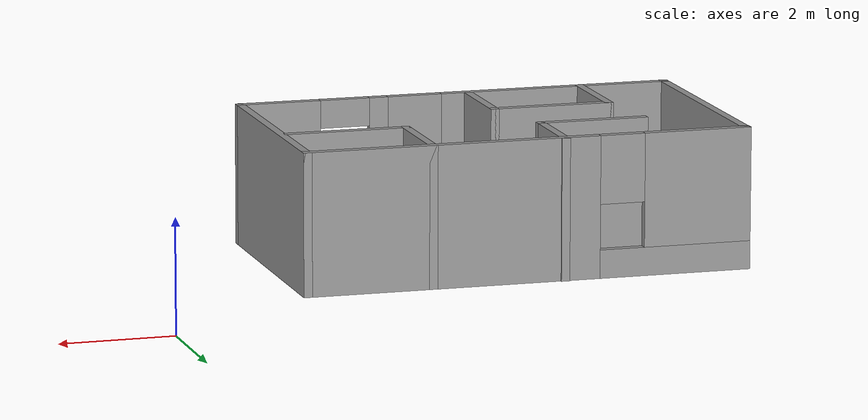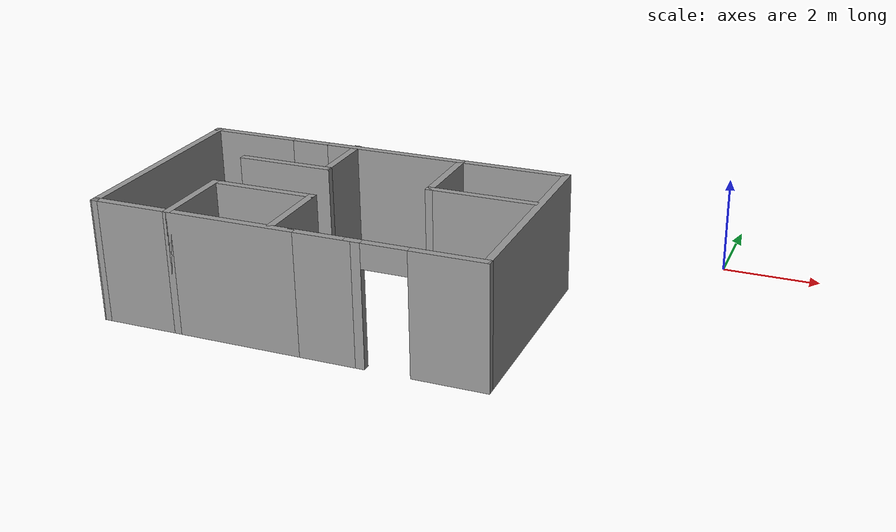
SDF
<?xml version='1.0'?>
<sdf version='1.7'>
  <model name='room'>
    <pose>-5.3825 -3.3125 0 0 -0 0</pose>
    <link name='Wall_0'>
      <pose>-1.3825 1.1125 0 0 -0 3.14159</pose>
      <visual name='Wall_0_Visual_0'>
        <pose>-1.3625 0 1.25 0 -0 0</pose>
        <geometry>
          <box>
            <size>5.275 0.15 2.5</size>
          </box>
        </geometry>
        <material>
          <script>
            <uri>file://media/materials/scripts/gazebo.material</uri>
            <name>Gazebo/Grey</name>
          </script>
          <ambient>1 1 1 1</ambient>
        </material>
        <meta>
          <layer>0</layer>
        </meta>
      </visual>
      <collision name='Wall_0_Collision_0'>
        <geometry>
          <box>
            <size>5.275 0.15 2.5</size>
          </box>
        </geometry>
        <pose>-1.3625 0 1.25 0 -0 0</pose>
      </collision>
      <visual name='Wall_0_Visual_1'>
        <pose>2.6375 0 0.25 0 -0 0</pose>
        <geometry>
          <box>
            <size>2.725 0.15 0.5</size>
          </box>
        </geometry>
        <material>
          <script>
            <uri>file://media/materials/scripts/gazebo.material</uri>
            <name>Gazebo/Grey</name>
          </script>
          <ambient>1 1 1 1</ambient>
        </material>
        <meta>
          <layer>0</layer>
        </meta>
      </visual>
      <collision name='Wall_0_Collision_1'>
        <geometry>
          <box>
            <size>2.725 0.15 0.5</size>
          </box>
        </geometry>
        <pose>2.6375 0 0.25 0 -0 0</pose>
      </collision>
      <visual name='Wall_0_Visual_2'>
        <pose>3.0375 0 1.5 0 -0 0</pose>
        <geometry>
          <box>
            <size>1.925 0.15 2</size>
          </box>
        </geometry>
        <material>
          <script>
            <uri>file://media/materials/scripts/gazebo.material</uri>
            <name>Gazebo/Grey</name>
          </script>
          <ambient>1 1 1 1</ambient>
        </material>
        <meta>
          <layer>0</layer>
        </meta>
      </visual>
      <collision name='Wall_0_Collision_2'>
        <geometry>
          <box>
            <size>1.925 0.15 2</size>
          </box>
        </geometry>
        <pose>3.0375 0 1.5 0 -0 0</pose>
      </collision>
      <visual name='Wall_0_Visual_3'>
        <pose>1.675 0 1.9 0 -0 0</pose>
        <geometry>
          <box>
            <size>0.8 0.15 1.2</size>
          </box>
        </geometry>
        <material>
          <script>
            <uri>file://media/materials/scripts/gazebo.material</uri>
            <name>Gazebo/Grey</name>
          </script>
          <ambient>1 1 1 1</ambient>
        </material>
        <meta>
          <layer>0</layer>
        </meta>
      </visual>
      <collision name='Wall_0_Collision_3'>
        <geometry>
          <box>
            <size>0.8 0.15 1.2</size>
          </box>
        </geometry>
        <pose>1.675 0 1.9 0 -0 0</pose>
      </collision>
    </link>
    <link name='Wall_1'>
      <collision name='Wall_1_Collision'>
        <geometry>
          <box>
            <size>0.16 0.15 2.5</size>
          </box>
        </geometry>
        <pose>0 0 1.25 0 -0 0</pose>
      </collision>
      <visual name='Wall_1_Visual'>
        <pose>0 0 1.25 0 -0 0</pose>
        <geometry>
          <box>
            <size>0.16 0.15 2.5</size>
          </box>
        </geometry>
        <material>
          <script>
            <uri>file://media/materials/scripts/gazebo.material</uri>
            <name>Gazebo/Grey</name>
          </script>
          <ambient>1 1 1 1</ambient>
        </material>
        <meta>
          <layer>0</layer>
        </meta>
      </visual>
      <pose>-5.3025 1.1125 0 0 -0 0</pose>
    </link>
    <link name='Wall_11'>
      <collision name='Wall_11_Collision'>
        <geometry>
          <box>
            <size>1.75 0.15 2.5</size>
          </box>
        </geometry>
        <pose>0 0 1.25 0 -0 0</pose>
      </collision>
      <visual name='Wall_11_Visual'>
        <pose>0 0 1.25 0 -0 0</pose>
        <geometry>
          <box>
            <size>1.75 0.15 2.5</size>
          </box>
        </geometry>
        <material>
          <script>
            <uri>file://media/materials/scripts/gazebo.material</uri>
            <name>Gazebo/Grey</name>
          </script>
          <ambient>1 1 1 1</ambient>
        </material>
        <meta>
          <layer>0</layer>
        </meta>
      </visual>
      <pose>-3.7175 -2.4375 0 0 -0 1.5708</pose>
    </link>
    <link name='Wall_12'>
      <collision name='Wall_12_Collision'>
        <geometry>
          <box>
            <size>2.25 0.15 2.5</size>
          </box>
        </geometry>
        <pose>0 0 1.25 0 -0 0</pose>
      </collision>
      <visual name='Wall_12_Visual'>
        <pose>0 0 1.25 0 -0 0</pose>
        <geometry>
          <box>
            <size>2.25 0.15 2.5</size>
          </box>
        </geometry>
        <material>
          <script>
            <uri>file://media/materials/scripts/gazebo.material</uri>
            <name>Gazebo/Grey</name>
          </script>
          <ambient>1 1 1 1</ambient>
        </material>
        <meta>
          <layer>0</layer>
        </meta>
      </visual>
      <pose>-2.6675 -1.6375 0 0 -0 0</pose>
    </link>
    <link name='Wall_13'>
      <collision name='Wall_13_Collision'>
        <geometry>
          <box>
            <size>1.75 0.15 2.5</size>
          </box>
        </geometry>
        <pose>0 0 1.25 0 -0 0</pose>
      </collision>
      <visual name='Wall_13_Visual'>
        <pose>0 0 1.25 0 -0 0</pose>
        <geometry>
          <box>
            <size>1.75 0.15 2.5</size>
          </box>
        </geometry>
        <material>
          <script>
            <uri>file://media/materials/scripts/gazebo.material</uri>
            <name>Gazebo/Grey</name>
          </script>
          <ambient>1 1 1 1</ambient>
        </material>
        <meta>
          <layer>0</layer>
        </meta>
      </visual>
      <pose>-1.6175 -2.4375 0 0 -0 -1.5708</pose>
    </link>
    <link name='Wall_15'>
      <collision name='Wall_15_Collision'>
        <geometry>
          <box>
            <size>1.29 0.15 2.5</size>
          </box>
        </geometry>
        <pose>0 0 1.25 0 -0 0</pose>
      </collision>
      <visual name='Wall_15_Visual'>
        <pose>0 0 1.25 0 -0 0</pose>
        <geometry>
          <box>
            <size>1.29 0.15 2.5</size>
          </box>
        </geometry>
        <material>
          <script>
            <uri>file://media/materials/scripts/gazebo.material</uri>
            <name>Gazebo/Grey</name>
          </script>
          <ambient>1 1 1 1</ambient>
        </material>
        <meta>
          <layer>0</layer>
        </meta>
      </visual>
      <pose>-0.6275 -3.2375 0 0 -0 3.14159</pose>
    </link>
    <link name='Wall_17'>
      <collision name='Wall_17_Collision'>
        <geometry>
          <box>
            <size>1.75 0.15 2.5</size>
          </box>
        </geometry>
        <pose>0 0 1.25 0 -0 0</pose>
      </collision>
      <visual name='Wall_17_Visual'>
        <pose>0 0 1.25 0 -0 0</pose>
        <geometry>
          <box>
            <size>1.75 0.15 2.5</size>
          </box>
        </geometry>
        <material>
          <script>
            <uri>file://media/materials/scripts/gazebo.material</uri>
            <name>Gazebo/Grey</name>
          </script>
          <ambient>1 1 1 1</ambient>
        </material>
        <meta>
          <layer>0</layer>
        </meta>
      </visual>
      <pose>0.3225 0.3125 0 0 -0 -1.5708</pose>
    </link>
    <link name='Wall_18'>
      <collision name='Wall_18_Collision'>
        <geometry>
          <box>
            <size>2.25 0.15 2.5</size>
          </box>
        </geometry>
        <pose>0 0 1.25 0 -0 0</pose>
      </collision>
      <visual name='Wall_18_Visual'>
        <pose>0 0 1.25 0 -0 0</pose>
        <geometry>
          <box>
            <size>2.25 0.15 2.5</size>
          </box>
        </geometry>
        <material>
          <script>
            <uri>file://media/materials/scripts/gazebo.material</uri>
            <name>Gazebo/Grey</name>
          </script>
          <ambient>1 1 1 1</ambient>
        </material>
        <meta>
          <layer>0</layer>
        </meta>
      </visual>
      <pose>1.3725 -0.4875 0 0 -0 0</pose>
    </link>
    <link name='Wall_2'>
      <collision name='Wall_2_Collision'>
        <geometry>
          <box>
            <size>4.5 0.15 2.5</size>
          </box>
        </geometry>
        <pose>0 0 1.25 0 -0 0</pose>
      </collision>
      <visual name='Wall_2_Visual'>
        <pose>0 0 1.25 0 -0 0</pose>
        <geometry>
          <box>
            <size>4.5 0.15 2.5</size>
          </box>
        </geometry>
        <material>
          <script>
            <uri>file://media/materials/scripts/gazebo.material</uri>
            <name>Gazebo/Grey</name>
          </script>
          <ambient>1 1 1 1</ambient>
        </material>
        <meta>
          <layer>0</layer>
        </meta>
      </visual>
      <pose>-5.2975 -1.0625 0 0 -0 -1.5708</pose>
    </link>
    <link name='Wall_3'>
      <collision name='Wall_3_Collision'>
        <geometry>
          <box>
            <size>4.25 0.15 2.5</size>
          </box>
        </geometry>
        <pose>0 0 1.25 0 -0 0</pose>
      </collision>
      <visual name='Wall_3_Visual'>
        <pose>0 0 1.25 0 -0 0</pose>
        <geometry>
          <box>
            <size>4.25 0.15 2.5</size>
          </box>
        </geometry>
        <material>
          <script>
            <uri>file://media/materials/scripts/gazebo.material</uri>
            <name>Gazebo/Grey</name>
          </script>
          <ambient>1 1 1 1</ambient>
        </material>
        <meta>
          <layer>0</layer>
        </meta>
      </visual>
      <pose>-3.2475 -3.2375 0 0 -0 0</pose>
    </link>
    <link name='Wall_5'>
      <collision name='Wall_5_Collision'>
        <geometry>
          <box>
            <size>4.5 0.15 2.5</size>
          </box>
        </geometry>
        <pose>0 0 1.25 0 -0 0</pose>
      </collision>
      <visual name='Wall_5_Visual'>
        <pose>0 0 1.25 0 -0 0</pose>
        <geometry>
          <box>
            <size>4.5 0.15 2.5</size>
          </box>
        </geometry>
        <material>
          <script>
            <uri>file://media/materials/scripts/gazebo.material</uri>
            <name>Gazebo/Grey</name>
          </script>
          <ambient>1 1 1 1</ambient>
        </material>
        <meta>
          <layer>0</layer>
        </meta>
      </visual>
      <pose>2.5425 -1.0625 0 0 -0 -1.5708</pose>
    </link>
    <link name='Wall_6'>
      <pose>1.2425 -3.2375 0 0 -0 3.14159</pose>
      <visual name='Wall_6_Visual_0'>
        <pose>-0.6175 0 1.25 0 -0 0</pose>
        <geometry>
          <box>
            <size>1.515 0.15 2.5</size>
          </box>
        </geometry>
        <material>
          <script>
            <uri>file://media/materials/scripts/gazebo.material</uri>
            <name>Gazebo/Grey</name>
          </script>
          <ambient>1 1 1 1</ambient>
        </material>
        <meta>
          <layer>0</layer>
        </meta>
      </visual>
      <collision name='Wall_6_Collision_0'>
        <geometry>
          <box>
            <size>1.515 0.15 2.5</size>
          </box>
        </geometry>
        <pose>-0.6175 0 1.25 0 -0 0</pose>
      </collision>
      <visual name='Wall_6_Visual_1'>
        <pose>1.2075 0 1.25 0 -0 0</pose>
        <geometry>
          <box>
            <size>0.335 0.15 2.5</size>
          </box>
        </geometry>
        <material>
          <script>
            <uri>file://media/materials/scripts/gazebo.material</uri>
            <name>Gazebo/Grey</name>
          </script>
          <ambient>1 1 1 1</ambient>
        </material>
        <meta>
          <layer>0</layer>
        </meta>
      </visual>
      <collision name='Wall_6_Collision_1'>
        <geometry>
          <box>
            <size>0.335 0.15 2.5</size>
          </box>
        </geometry>
        <pose>1.2075 0 1.25 0 -0 0</pose>
      </collision>
      <visual name='Wall_6_Visual_2'>
        <pose>0.59 0 2.25 0 -0 0</pose>
        <geometry>
          <box>
            <size>0.9 0.15 0.5</size>
          </box>
        </geometry>
        <material>
          <script>
            <uri>file://media/materials/scripts/gazebo.material</uri>
            <name>Gazebo/Grey</name>
          </script>
          <ambient>1 1 1 1</ambient>
        </material>
        <meta>
          <layer>0</layer>
        </meta>
      </visual>
      <collision name='Wall_6_Collision_2'>
        <geometry>
          <box>
            <size>0.9 0.15 0.5</size>
          </box>
        </geometry>
        <pose>0.59 0 2.25 0 -0 0</pose>
      </collision>
    </link>
    <link name='Wall_8'>
      <collision name='Wall_8_Collision'>
        <geometry>
          <box>
            <size>1.5 0.15 2.5</size>
          </box>
        </geometry>
        <pose>0 0 1.25 0 -0 0</pose>
      </collision>
      <visual name='Wall_8_Visual'>
        <pose>0 0 1.25 0 -0 0</pose>
        <geometry>
          <box>
            <size>1.5 0.15 2.5</size>
          </box>
        </geometry>
        <material>
          <script>
            <uri>file://media/materials/scripts/gazebo.material</uri>
            <name>Gazebo/Grey</name>
          </script>
          <ambient>1 1 1 1</ambient>
        </material>
        <meta>
          <layer>0</layer>
        </meta>
      </visual>
      <pose>-2.0275 0.4675 0 0 -0 -1.5708</pose>
    </link>
    <link name='Wall_9'>
      <collision name='Wall_9_Collision'>
        <geometry>
          <box>
            <size>2 0.15 2.5</size>
          </box>
        </geometry>
        <pose>0 0 1.25 0 -0 0</pose>
      </collision>
      <visual name='Wall_9_Visual'>
        <pose>0 0 1.25 0 -0 0</pose>
        <geometry>
          <box>
            <size>2 0.15 2.5</size>
          </box>
        </geometry>
        <material>
          <script>
            <uri>file://media/materials/scripts/gazebo.material</uri>
            <name>Gazebo/Grey</name>
          </script>
          <ambient>1 1 1 1</ambient>
        </material>
        <meta>
          <layer>0</layer>
        </meta>
      </visual>
      <pose>-2.9525 -0.2075 0 0 -0 3.14159</pose>
    </link>
    <static>1</static>
  </model>
</sdf>
